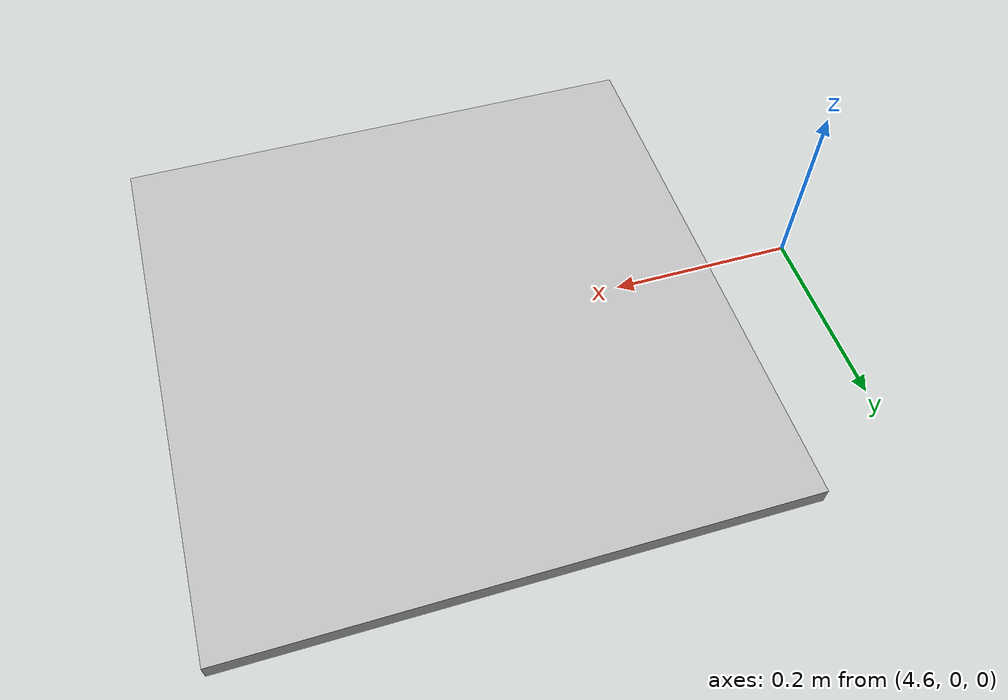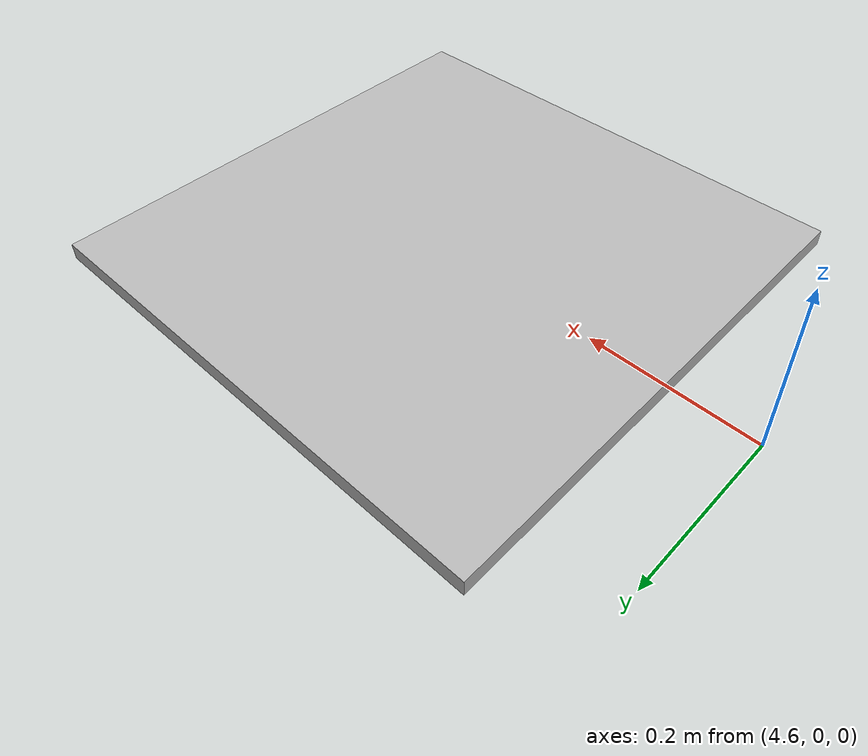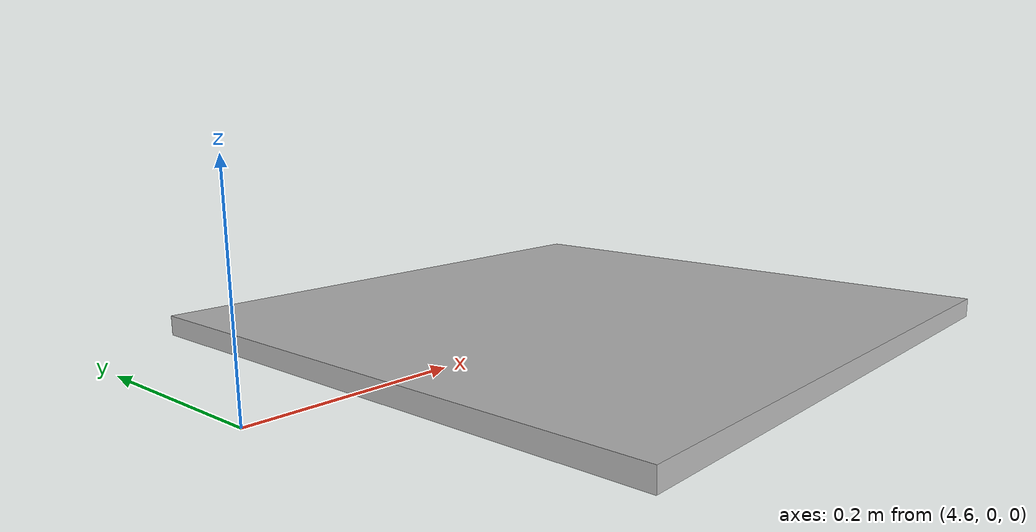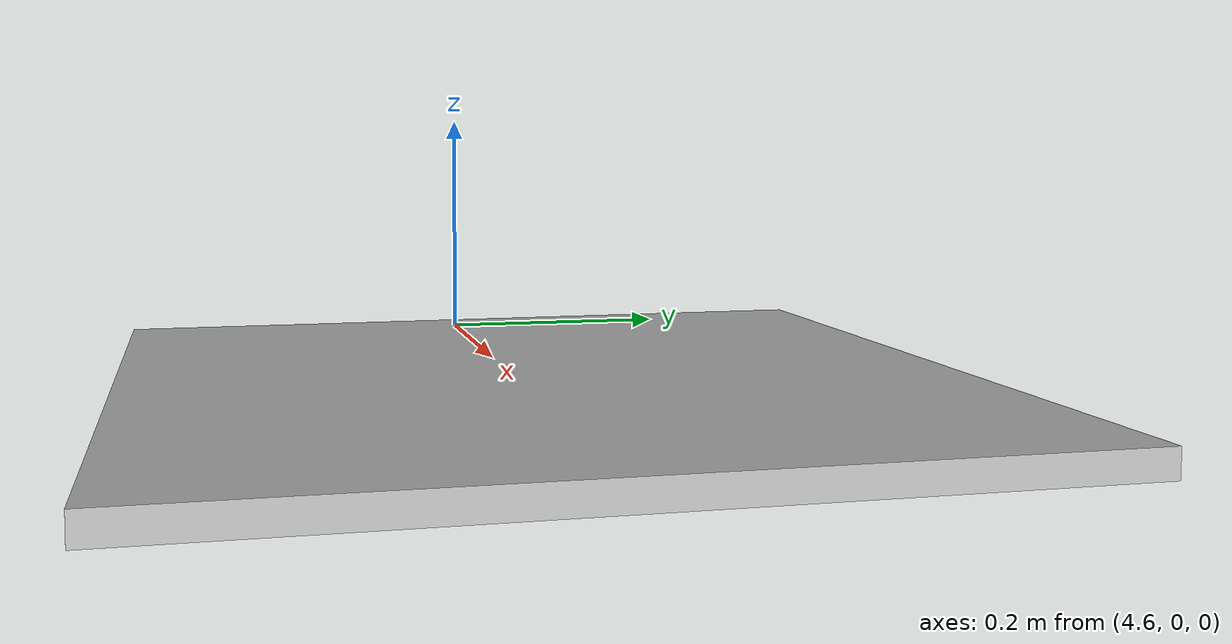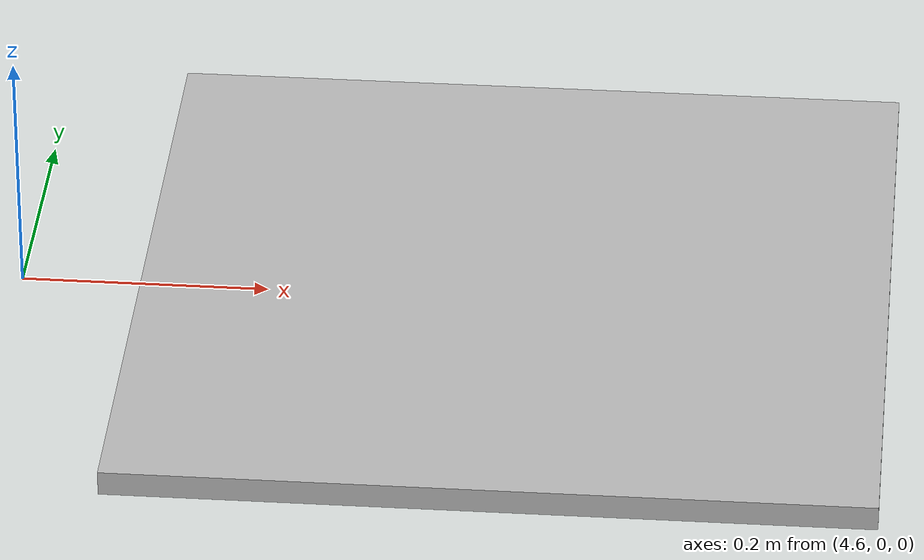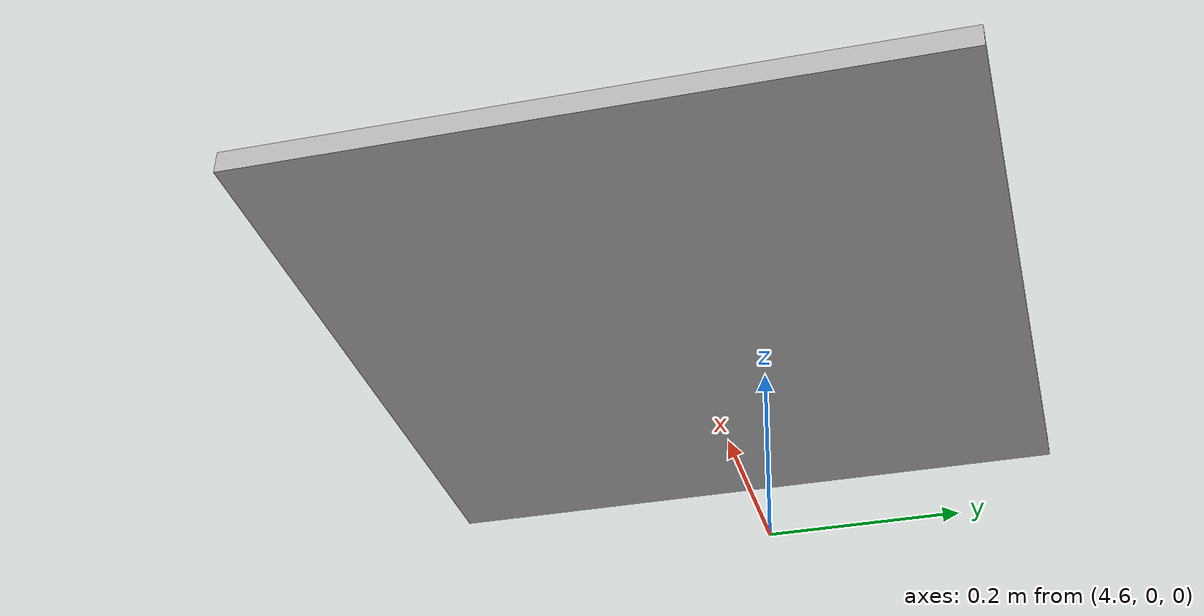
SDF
<?xml version="1.0" ?>
<sdf version="1.5">
  <model name="landing_pad">
    <pose>5.0 0 0.01 0 0 0</pose>
    <static>true</static>
    <link name="link">
      <inertial>
        <mass>0.5</mass>
        <inertia>
          <ixx>0.001</ixx>
          <ixy>0</ixy>
          <ixz>0</ixz>
          <iyy>0.001</iyy>
          <iyz>0</iyz>
          <izz>0.001</izz>
        </inertia>
      </inertial>
      <collision name="collision">
        <geometry>
          <box>
            <size>0.6 0.6 0.02</size>
          </box>
        </geometry>
      </collision>
      <visual name="visual">
        <geometry>
          <box>
            <size>0.6 0.6 0.02</size>
          </box>
        </geometry>
        <material>
          <script>
            <uri>model://landing_pad/materials/scripts</uri>
	          <uri>model://landing_pad/materials/textures</uri>
            <name>Cube/landing_pad</name>
          </script>
        </material>
      </visual>
    </link>
  </model>
</sdf>
